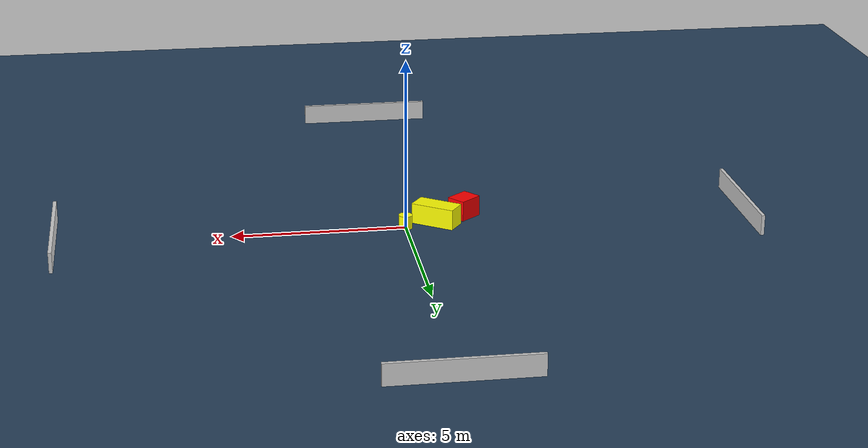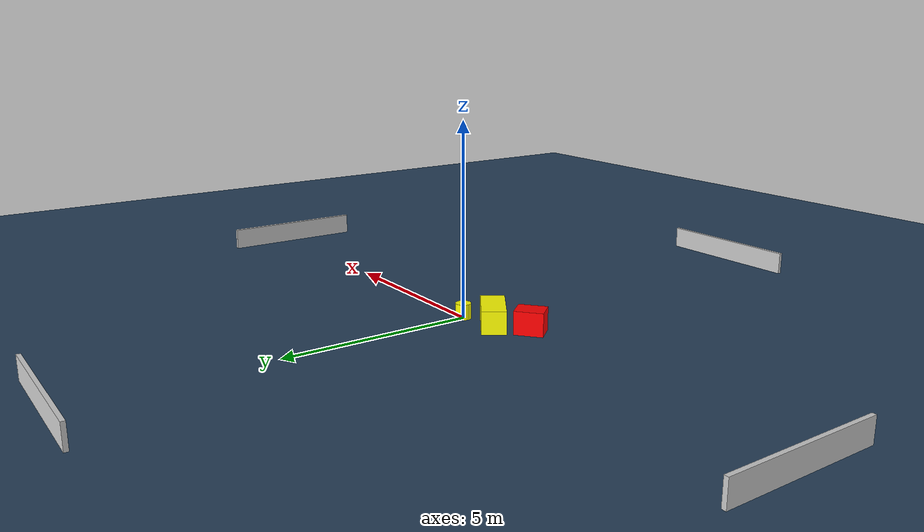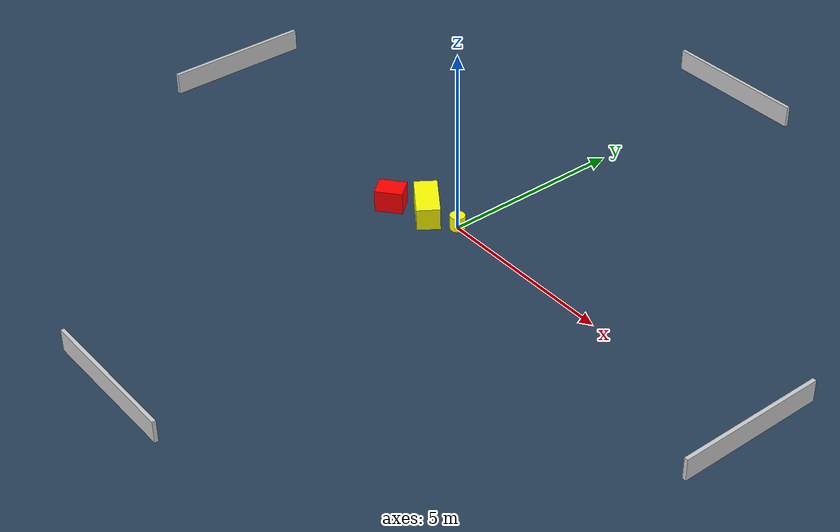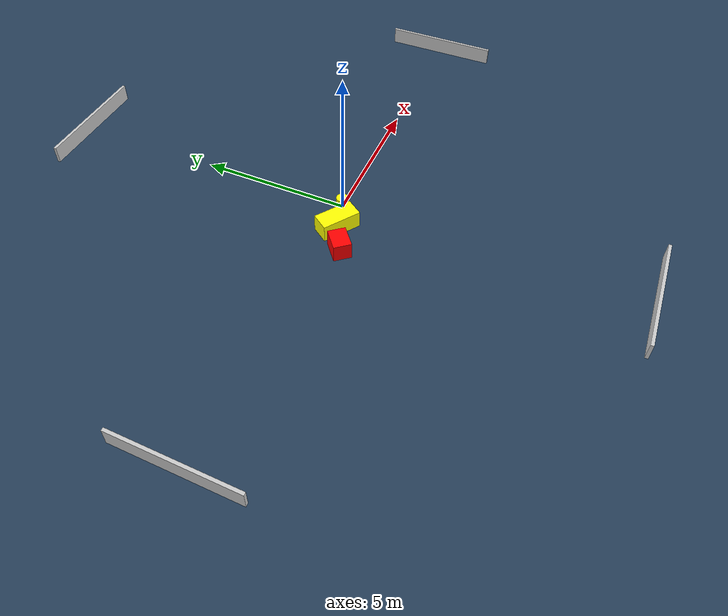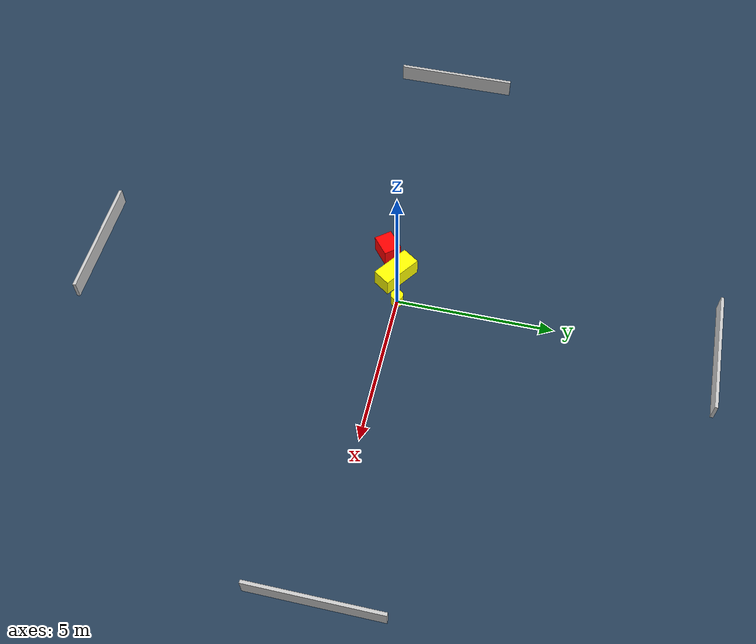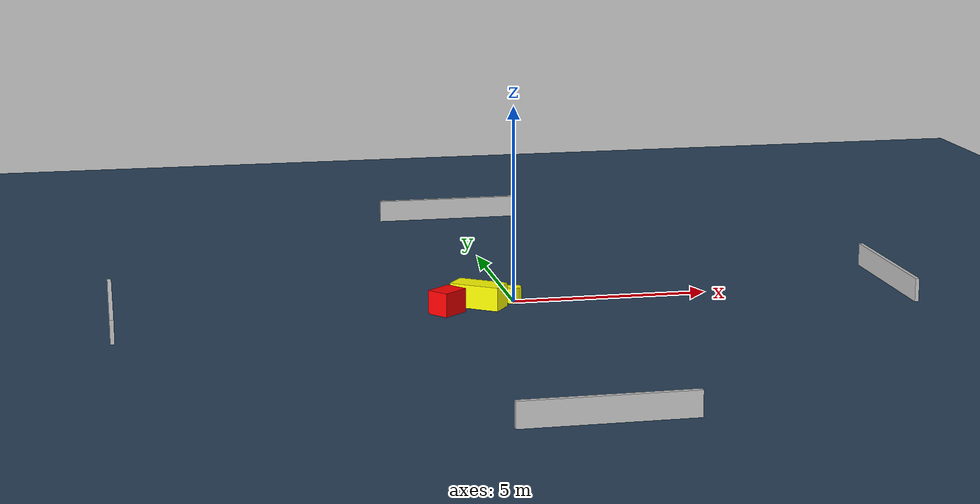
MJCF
<?xml version="1.0" ?>
<mujoco model="generated_environment">
  <option timestep="0.01" integrator="RK4" cone="elliptic"/>
  <default>
    <geom density="1"/>
  </default>
  <asset>
    <texture builtin="gradient" height="3072" name="skybox" rgb1="0.3 0.5 0.7" rgb2="0 0 0" type="skybox" width="512"/>
    <texture builtin="checker" height="300" name="groundplane" rgb1="0.2 0.3 0.4" rgb2="0.1 0.2 0.3" type="2d" width="300"/>
    <material name="groundplane" reflectance="0.2" texrepeat="5 5" texture="groundplane"/>
  </asset>
  <worldbody>
    <light dir="0 0 -1" directional="true" pos="0 0 1.5"/>
    <geom condim="3" friction="0.5 0.005 0.001" material="groundplane" name="floor" pos="0 0 0" size="0 0 0.05" type="plane"/>
    <body name="walls">
      <geom name="wall_1" condim="4" pos="-10.0 0.0 0.3" rgba="0.800000011920929 0.800000011920929 0.800000011920929 1.0" size="0.05 2.0 0.3" type="box"/>
      <geom name="wall_2" condim="4" pos="10.0 0.0 0.3" rgba="0.800000011920929 0.800000011920929 0.800000011920929 1.0" size="0.05 2.0 0.3" type="box"/>
      <geom name="wall_3" condim="4" pos="0.0 -10.0 0.3" rgba="0.800000011920929 0.800000011920929 0.800000011920929 1.0" size="2.0 0.05 0.3" type="box"/>
      <geom name="wall_4" condim="4" pos="0.0 10.0 0.3" rgba="0.800000011920929 0.800000011920929 0.800000011920929 1.0" size="2.0 0.05 0.3" type="box"/>
    </body>
    <body name="robot">
      <joint name="joint_x" type="slide" pos="0 0 0" axis="1 0 0"/>
      <joint name="joint_y" type="slide" pos="0 0 0" axis="0 1 0"/>
      <geom name="robot" type="cylinder" pos="0.0 0.0 0.2" size="0.2 0.2 0.0" mass="5.0" friction="1.0 0.005 0.0001" condim="4" rgba="1.0 1.0 0.0 1.0"/>
    </body>
    <body name="obstacle_1_movable">
      <geom name="obstacle_1_movable" condim="4" pos="-0.9378358792713059 -0.23697397138454418 0.3" euler="0 0 55.0738729316797" friction="0.0 0.005 0.001" rgba="1.0 1.0 0.0 1.0" size="0.30669374751394696 0.6511518801663629 0.3" type="box" mass="0.1"/>
      <joint type="free"/>
    </body>
    <body name="obstacle_2_static">
      <geom name="obstacle_2_static" condim="4" pos="-1.8206805375214892 -0.712107973932139 0.3" euler="0 0 129.29192862293195" friction="0.0 0.005 0.001" rgba="1.0 0.0 0.0 1.0" size="0.29151687256696124 0.36707236284604494 0.3" type="box"/>
    </body>
  </worldbody>
  <actuator>
    <motor name="actuator_x" joint="joint_x" gear="1" ctrlrange="-1 1"/>
    <motor name="actuator_y" joint="joint_y" gear="1" ctrlrange="-1 1"/>
  </actuator>
</mujoco>
